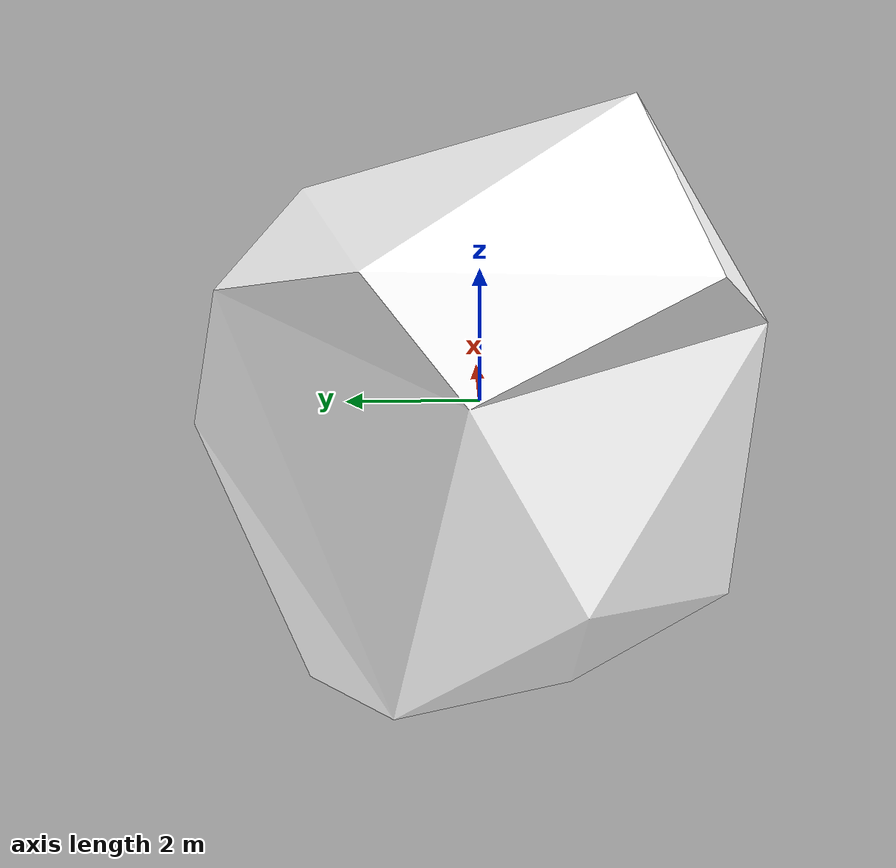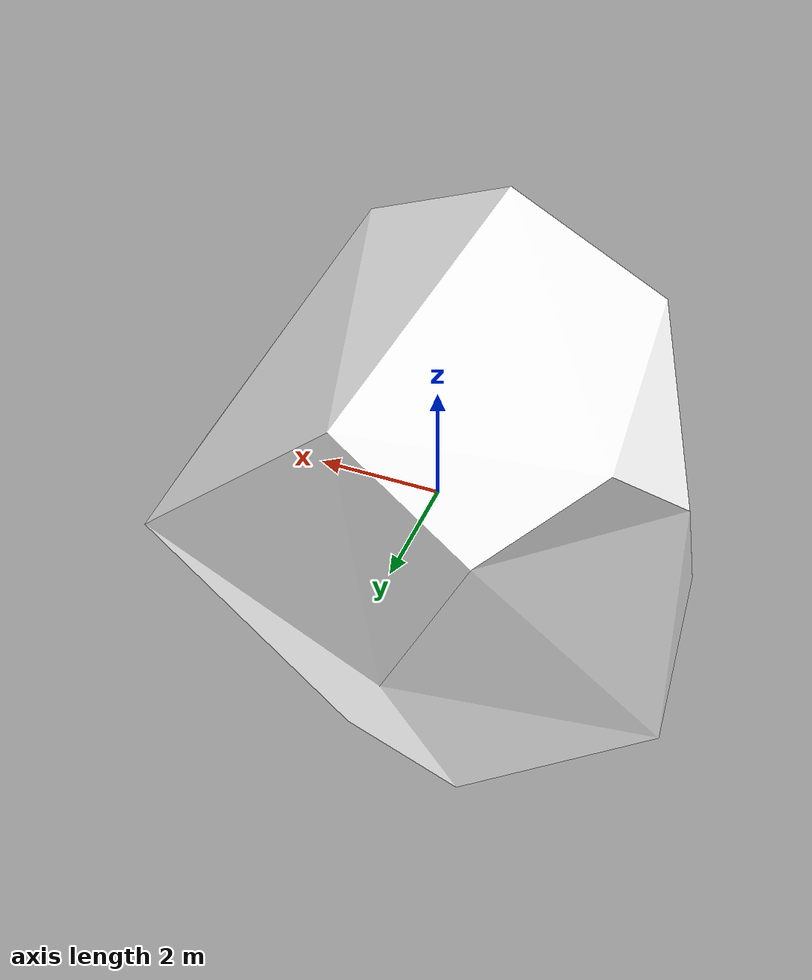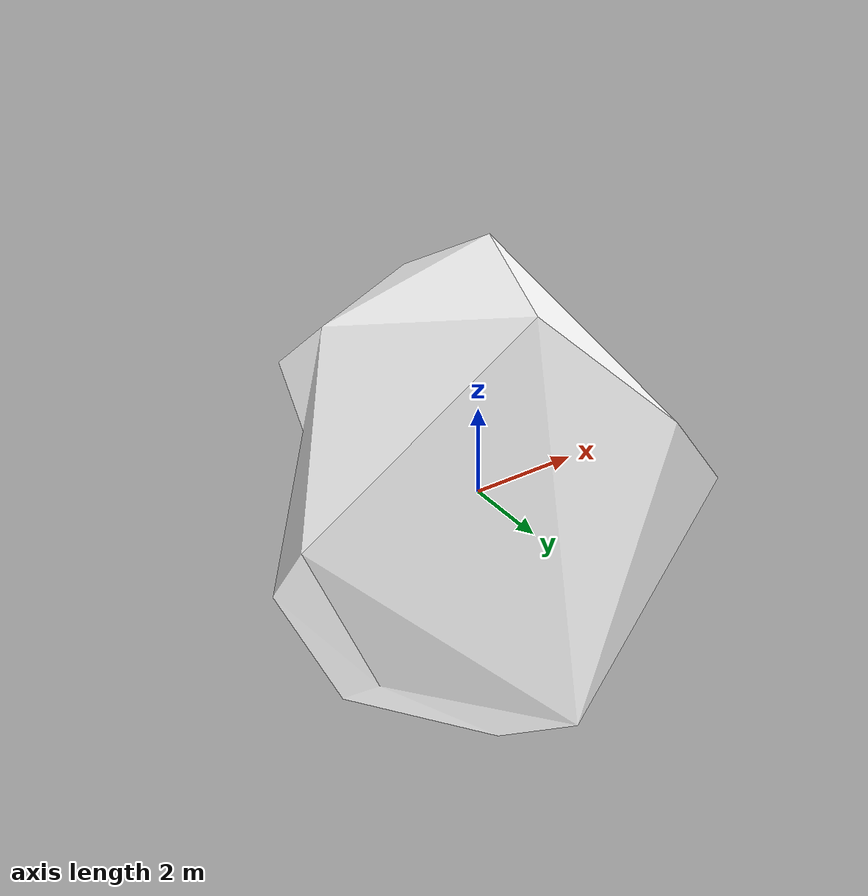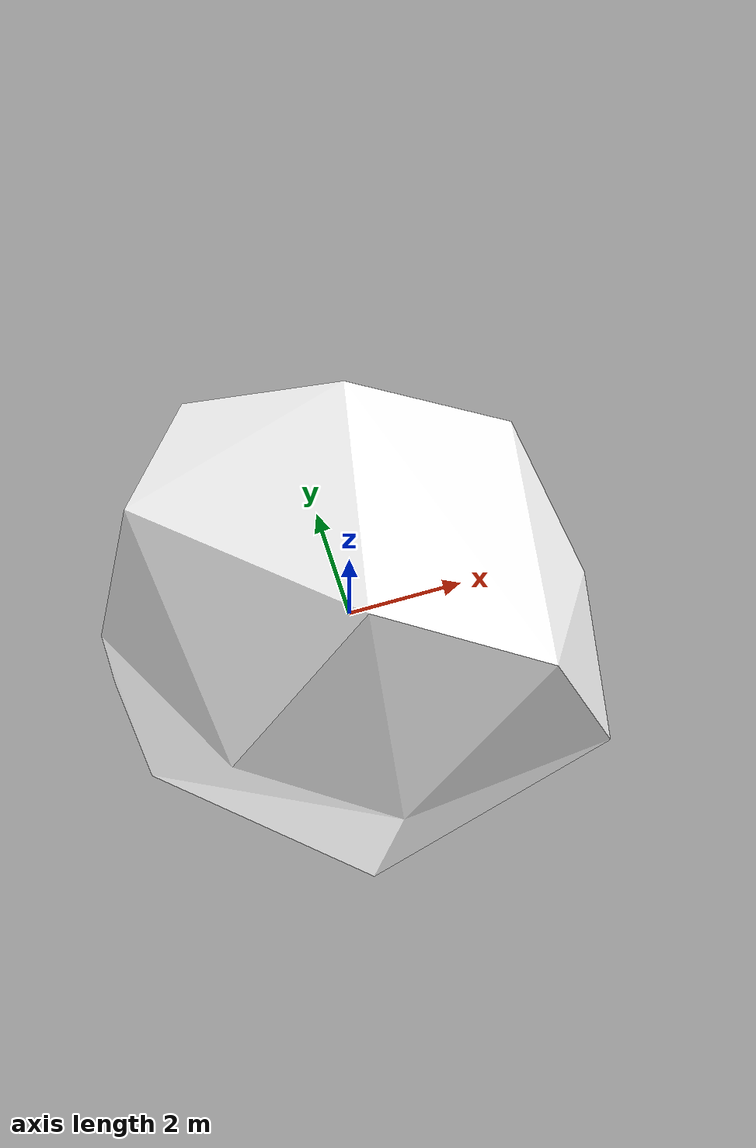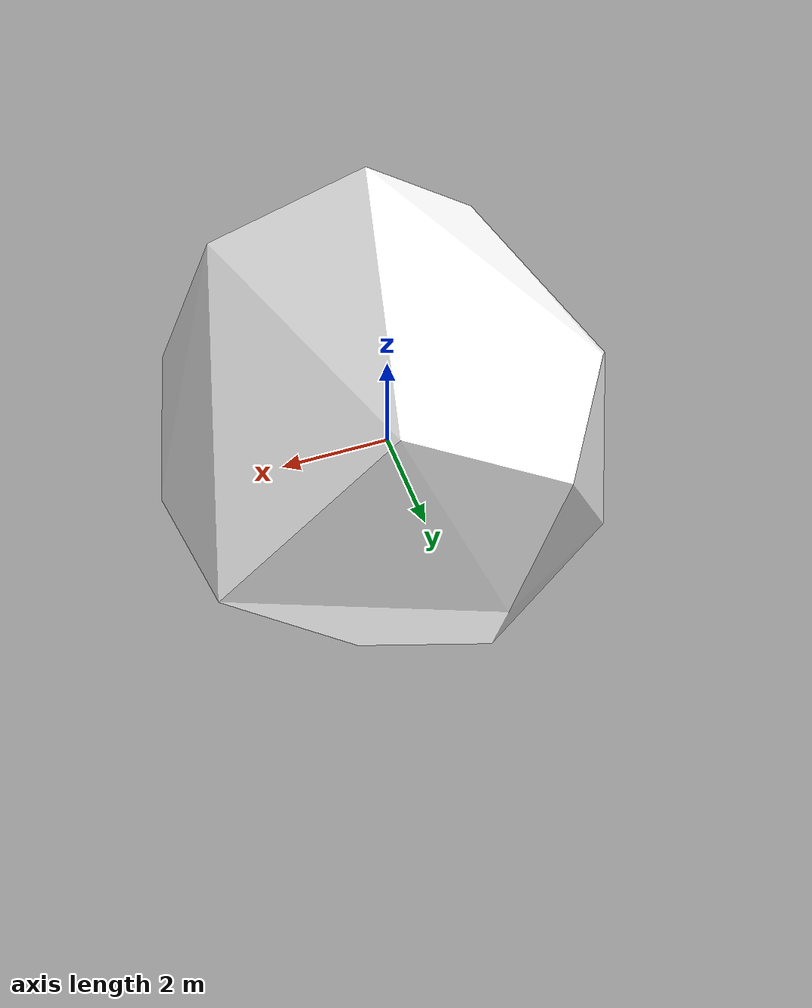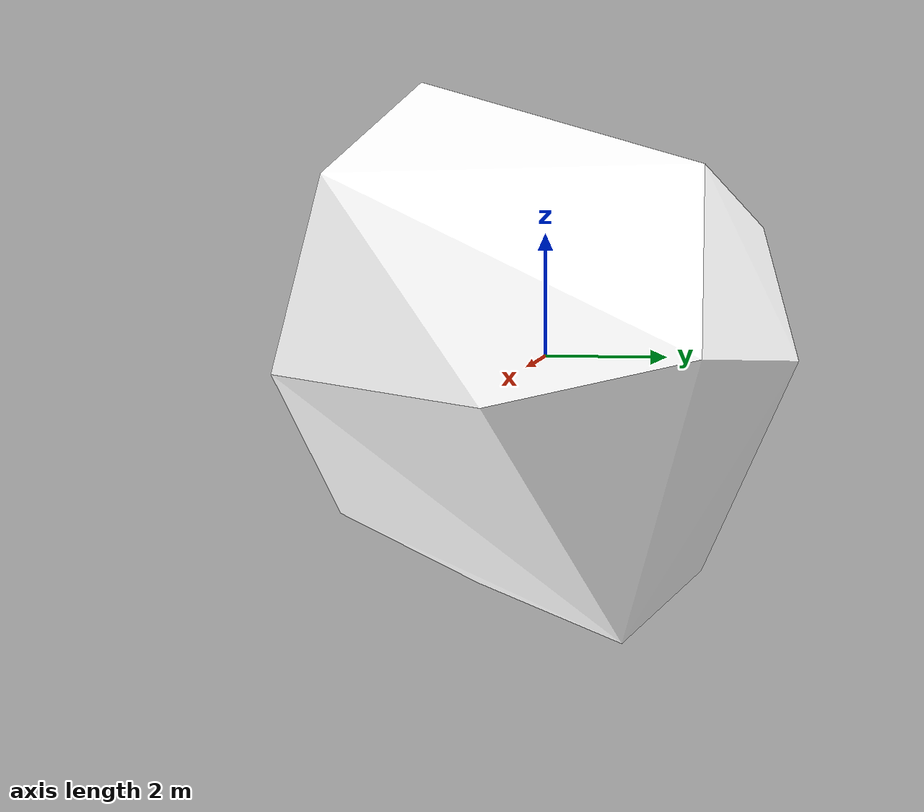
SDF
<?xml version="1.0" ?>
<sdf version="1.6">
    <model name="falling_rock5">
        <link name="base_link">
            <inertial>
                <pose>-0.007531 -0.004988 -0.003053 0 0 0</pose>
                <mass>8.754</mass>
                <inertia>
                    <ixx>0.03759048</ixx>
                    <ixy>0.0016556</ixy>
                    <ixz>-0.00166835</ixz>
                    <iyy>0.03739189</iyy>
                    <iyz>0.0015484</iyz>
                    <izz>0.03603241</izz>
                </inertia>
            </inertial>
            <collision name="collision">
                <geometry>
                    <mesh>
                        <scale>40 40 40</scale>
            <uri>meshes/FallingRock05_Collider.dae</uri>
                    </mesh>
                </geometry>
            </collision>
            <visual name="visual">
                <geometry>
                    <mesh>
                        <scale>40 40 40</scale>
            <uri>meshes/FallingRock05.dae</uri>
                    </mesh>
                </geometry>
                <material>
                    <diffuse>1.0 1.0 1.0</diffuse>
                    <specular>1.0 1.0 1.0</specular>
                    <pbr>
                        <metal>
                            <albedo_map>https://fuel.gazebosim.org/1.0/openrobotics/models/falling rock 5/6/files/materials/textures/FallingRocks_Albedo.jpg</albedo_map>
                            <normal_map>https://fuel.gazebosim.org/1.0/openrobotics/models/falling rock 5/6/files/materials/textures/FallingRocks_Normal.jpg</normal_map>
                            <roughness_map>https://fuel.gazebosim.org/1.0/openrobotics/models/falling rock 5/6/files/materials/textures/FallingRocks_Roughness.jpg</roughness_map>
                        </metal>
                    </pbr>
                    <!-- fallback to script if no PBR support-->
                    <script>
                        <uri>https://fuel.gazebosim.org/1.0/openrobotics/models/falling rock 5/6/files/materials/scripts</uri>
                        <uri>https://fuel.gazebosim.org/1.0/openrobotics/models/falling rock 5/6/files/materials/textures</uri>
                        <name>FallingRocks/FallingRocks_Diffuse</name>
                    </script>
                </material>
            </visual>
        </link>
    </model>
</sdf>
